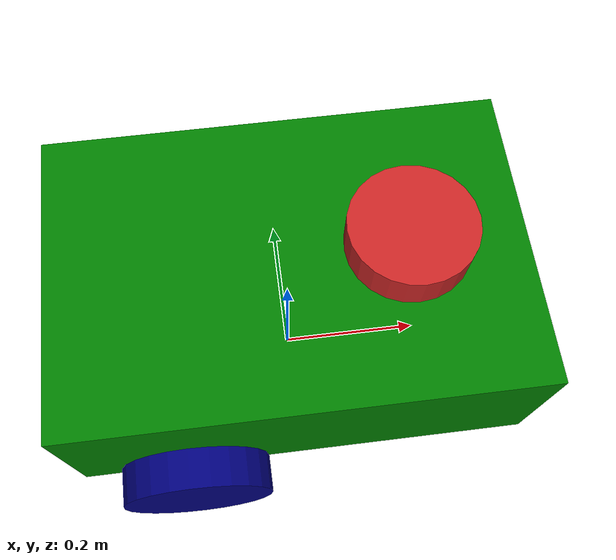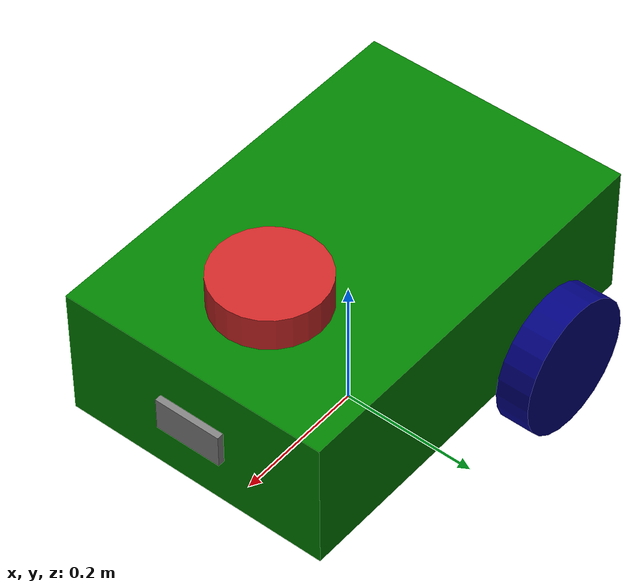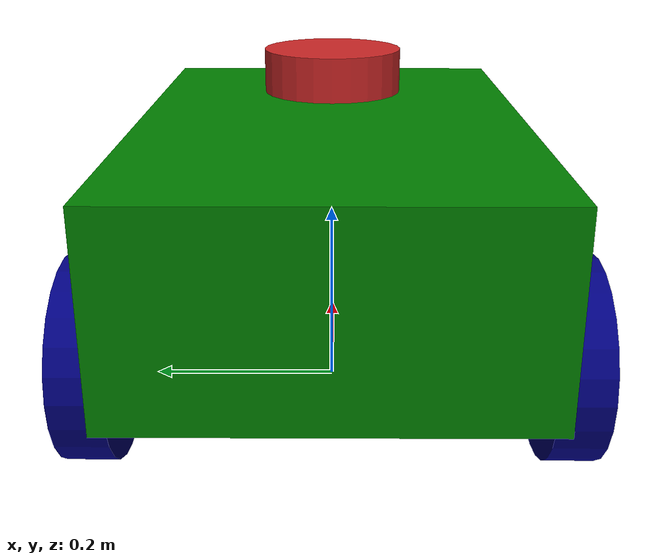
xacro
<?xml version="1.0"?>
<robot name="my_robot" xmlns:xacro="http://www.ros.org/wiki/xacro">

    <xacro:include filename="common_properties.xacro" />
    <xacro:include filename="mobile_base.xacro" />
    <xacro:include filename="mobile_base_gazebo.xacro" />
    <xacro:include filename="camera.xacro" />
    <xacro:include filename="lidar.xacro" />

</robot>

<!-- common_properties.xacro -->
<robot xmlns:xacro="http://www.ros.org/wiki/xacro">

                    <!--COMMON COLORS -->

    <material name="green">
        <color rgba="0.0 0.5 0.0 1" />
    </material>

    <material name="blue">
        <color rgba="0.0 0.0 0.5 1" />
    </material>

    <material name="red">
        <color rgba="1 0 0 1" />
    </material>

    <material name="grey">
        <color rgba="0.5 0.5 0.5 1" />
    </material>

                <!--INERTIA FOR COMMON SHAPES-->

        <!--box-->
    <xacro:macro name="box_inertia" params="m l w h xyz rpy">
        <inertial>
            <origin xyz="${xyz}" rpy="${rpy}" />
            <mass value="${m}" />
            <inertia ixx="${(m/12) * (h*h + l*l)}" ixy="0" ixz="0"
                     iyy="${(m/12) * (w*w + l*l)}" iyz="0"
                     izz="${(m/12) * (w*w + h*h)}" />
        </inertial>
    </xacro:macro>

        <!--cylinder-->
    <xacro:macro name="cylinder_inertia" params="m h r xyz rpy">
        <inertial>
            <origin xyz="${xyz}" rpy="${rpy}" />
            <mass value="${m}" />
            <inertia ixx="${(m/12) * (3*r*r + h*h)}" ixy="0" ixz="0"
                     iyy="${(m/12) * (3*r*r + h*h)}" iyz="0"
                     izz="${0.5*m*r*r}" />
        </inertial>
    </xacro:macro>

        <!--sphere-->
    <xacro:macro name="sphere_inertia" params="m r xyz rpy">
        <inertial>
            <origin xyz="${xyz}" rpy="${rpy}" />
            <mass value="${m}" />
            <inertia ixx="${(2/5) * (m*r*r)}" ixy="0" ixz="0"
                     iyy="${(2/5) * (m*r*r)}" iyz="0"
                     izz="${(2/5) * (m*r*r)}" />
        </inertial>
    </xacro:macro>

</robot>

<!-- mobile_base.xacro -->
<robot xmlns:xacro="http://www.ros.org/wiki/xacro">

    <xacro:property name="base_length" value="0.6" />
    <xacro:property name="base_width" value="0.4" />
    <xacro:property name="base_height" value="0.2" />
    <xacro:property name="wheel_radius" value="0.1" />
    <xacro:property name="wheel_length" value="0.05" />

    <link name="base_footprint" />

    <link name="base_link">
        <visual>
            <geometry>
                <box size="${base_length} ${base_width} ${base_height}" />
            </geometry>
            <origin xyz="0 0 ${base_height/2.0}" rpy="0 0 0" />
            <material name="green" />
        </visual>
        <collision>
            <geometry>
                <box size="${base_length} ${base_width} ${base_height}" />
            </geometry>
            <origin xyz="0 0 ${base_height/2.0}" rpy="0 0 0" />
        </collision>
        <xacro:box_inertia m="5.0" l="${2*base_length}" w="${2*base_width}" h="${2*base_height}"
                           xyz="0 0 ${base_height/2.0}" rpy="0 0 0" />
    </link>

    <xacro:macro name="wheel_link" params="prefix">
        <link name="${prefix}_wheel_link">
            <visual>
                <geometry>
                    <cylinder radius="${wheel_radius}" length="${wheel_length}" />
                </geometry>
                <origin xyz="0 0 0" rpy="${pi/2.0} 0 0" />
                <material name="blue" />
            </visual>
            <collision>
                <geometry>
                    <cylinder radius="${wheel_radius}" length="${wheel_length}" />
                </geometry>
                <origin xyz="0 0 0" rpy="${pi/2.0} 0 0" />
            </collision>
            <xacro:cylinder_inertia m="1.0" h="${2*wheel_length}" r="${2*wheel_radius}"
                                    xyz="0 0 0" rpy="${pi/2.0} 0 0" />
        </link>

    </xacro:macro>

    <xacro:wheel_link prefix="right" />
    <xacro:wheel_link prefix="left" />

    <link name="caster_wheel_link">
        <visual>
            <geometry>
                <sphere radius="${wheel_radius/2.0}"/>
            </geometry>
            <origin xyz="0 0 0" rpy="0 0 0" />
            <material name="grey" />
        </visual>
        <collision>
            <geometry>
                <sphere radius="${wheel_radius/2.0}"/>
            </geometry>
            <origin xyz="0 0 0" rpy="0 0 0" />
        </collision>
        <xacro:sphere_inertia m="0.5" r="${2*wheel_radius/2.0}"
                              xyz="0 0 0" rpy="0 0 0" />
    </link>

                <!--body joint-->
    <joint name="base_joint" type="fixed">
        <parent link="base_footprint" />
        <child link="base_link" />
        <origin xyz="0 0 ${wheel_radius}" rpy="0 0 0" />
    </joint>
                <!--wheel joints-->
    <joint name="base_right_wheel_joint" type="continuous">
        <parent link="base_link" />
        <child link="right_wheel_link" />
        <origin xyz="${-base_length/4.0} ${-(base_width + wheel_length)/2.0} 0" rpy="0 0 0" />
        <axis xyz="0 1 0" />
    </joint>

    <joint name="base_left_wheel_joint" type="continuous">
        <parent link="base_link" />
        <child link="left_wheel_link" />
        <origin xyz="${-base_length/4.0} ${(base_width + wheel_length)/2.0} 0" rpy="0 0 0" />
        <axis xyz="0 1 0" />
    </joint>

    <joint name="base_caster_wheel_joint" type="fixed">
        <parent link="base_link" />
        <child link="caster_wheel_link" />
        <origin xyz="${base_length/3.0} 0 ${-wheel_radius/2.0}" rpy="0 0 0" />
    </joint>

</robot>

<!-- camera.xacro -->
<robot xmlns:xacro="http://www.ros.org/wiki/xacro">

    <xacro:property name="camera_length" value="0.01" />
    <xacro:property name="camera_width" value="0.1" />
    <xacro:property name="camera_height" value="0.05" />

    <link name="camera_link">
        <visual>
            <geometry>
                <box size="${camera_length} ${camera_width} ${camera_height}" />
            </geometry>
            <material name="grey" />
        </visual>
        <collision>
            <geometry>
                <box size="${camera_length} ${camera_width} ${camera_height}" />
            </geometry>
        </collision>
        <xacro:box_inertia m="0.1" l="${camera_length}" w="${camera_width}" h="${camera_height}"
                           xyz="0 0 0" rpy="0 0 0" />
    </link>

    <joint name="base_camera_joint" type="fixed">
        <parent link="base_link" />
        <child link="camera_link" />
        <origin xyz="${(base_length + camera_length)/2.0} 0 ${base_height/2.0}" rpy="0 0 0" />
    </joint>

    <gazebo reference="camera_link">
        <material>Gazebo/Red</material>
        <sensor name="camera_sensor" type="camera">
            <pose>0 0 0 0 0 0</pose>
            <visualize>true</visualize>
            <update_rate>5.0</update_rate>
            <plugin name="camera_controller" filename="libgazebo_ros_camera.so">
                <frame_name>camera_link</frame_name>
            </plugin>
        </sensor>
    </gazebo>

</robot>

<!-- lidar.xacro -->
<robot xmlns:xacro="http://www.ros.org/wiki/xacro">

    <xacro:property name="lidar_length" value="0.05" />
    <xacro:property name="lidar_radius" value="0.08" />

    <link name="lidar_link">
        <visual>
            <geometry>
                <cylinder radius="${lidar_radius}" length="${lidar_length}" />
                <origin xyz="0 0 0" rpy="0 0 0" />
                <material name="red" />
            </geometry>
        </visual>

        <collision>
            <geometry>
                <cylinder radius="${lidar_radius}" length="${lidar_length}" />
                <origin xyz="0 0 0" rpy="0 0 0" />
                <material name="red" />
            </geometry>
        </collision>

        <xacro:cylinder_inertia m="0.5" h="${2*lidar_length}" r="${2*lidar_radius}"
                                    xyz="0 0 0" rpy="0 0 0" />
    </link>

    <joint name="base_lidar_joint" type="fixed">
        <parent link="base_link" />
        <child link="lidar_link" />
        <origin xyz="${0.25*base_length} 0 ${base_height + 0.5*lidar_length}" rpy="0 0 0" />
    </joint>

    <gazebo reference="lidar_link">
        <material>Gazebo/Red</material>

        <sensor name="laser" type="ray">
            <pose> 0 0 0 0 0 0 </pose>
            <always_on>true</always_on>
            <visualize>true</visualize>
            <update_rate>10</update_rate>
            <ray>
                <scan>
                    <horizontal>
                        <samples>360</samples>
                        <resolution>1.000</resolution>
                        <min_angle>-3.14</min_angle>
                        <max_angle>3.14</max_angle>
                    </horizontal>
                </scan>
                <range>
                    <min>0.3</min>
                    <max>12</max>
                    <resolution>0.015</resolution>
                </range>
            </ray>

            <plugin name="laser_controller" filename="libgazebo_ros_ray_sensor.so">
                <ros>
                    <remapping>~/out:=scan</remapping>
                </ros>
                <output_type>sensor_msgs/LaserScan</output_type>
                <frame_name>lidar_link</frame_name>
            </plugin>
        </sensor>
    </gazebo>

</robot>
